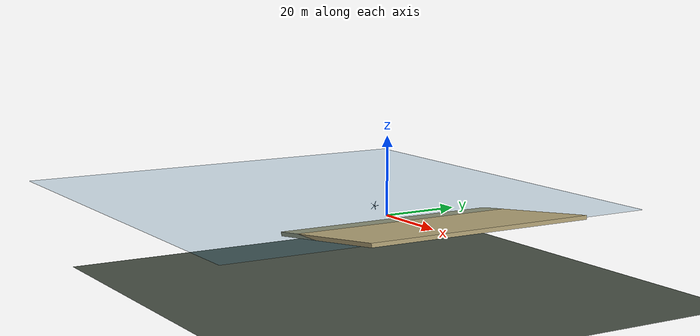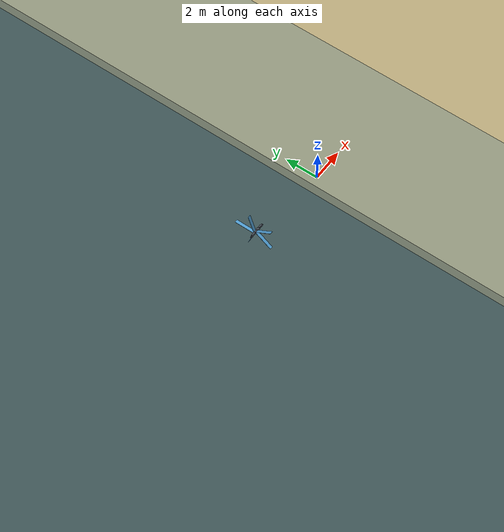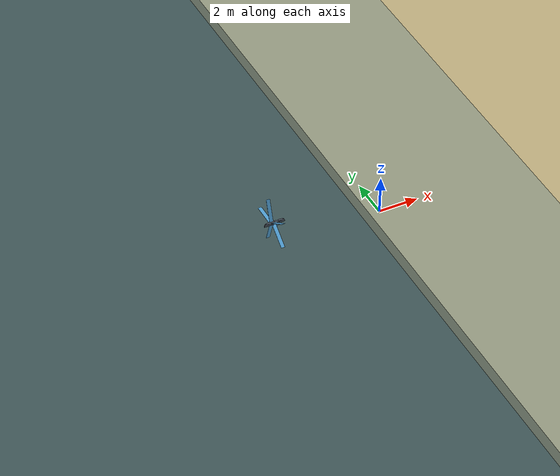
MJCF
<mujoco model="dytiscidae"><option timestep="0.004" gravity="0 0 -9.80665" density="0" viscosity="0" integrator="implicitfast" cone="elliptic" /><compiler angle="radian" autolimits="true" /><visual><global offwidth="1280" offheight="800" /><quality shadowsize="2048" offsamples="4" /><map znear="0.02" zfar="80" /><headlight ambient="0.45 0.46 0.48" diffuse="0.55 0.55 0.55" specular="0.15 0.15 0.15" /></visual><default><geom friction="0.9 0.02 0.001" condim="4" solref="0.008 1" margin="0.001" contype="1" conaffinity="2" /><joint damping="0.05" armature="0.002" limited="true" /></default><asset><texture type="skybox" builtin="gradient" rgb1="0.5 0.7 0.9" rgb2="0.05 0.1 0.2" width="256" height="256" /><texture name="grid" type="2d" builtin="checker" rgb1="0.25 0.28 0.24" rgb2="0.3 0.34 0.29" width="300" height="300" /><material name="seabed" texture="grid" texrepeat="20 20" reflectance="0.05" /><material name="beach" rgba="0.72 0.66 0.48 1" /><material name="water" rgba="0.15 0.4 0.55 0.25" /><mesh name="m0" vertex="-0.013602 -0.0314 -0.066995 -0.013602 -0.0314 -0.03979 -0.013602 -0.013602 -0.084792 -0.013602 0.013602 -0.084792 0.013602 -0.013602 -0.084792 0.013602 0.013602 -0.084792 -0.013602 -0.013602 -0.03979 -0.013602 0.013602 -0.066995 -0.013602 0.0314 -0.066995 -0.013602 0.0314 -0.03979 0.04996 -0.049197 -0.066995 0.04996 -0.049197 -0.03979 0.04996 -0.013602 0.084792 0.04996 0.013602 0.084792 0.04996 0.049197 -0.066995 0.04996 0.049197 -0.03979 0.077165 0.049197 -0.066995 0.077165 0.049197 -0.03979 0.11352 -0.049197 -0.066995 0.14073 -0.013602 -0.084792 0.11352 -0.013602 0.084792 0.14073 0.013602 0.084792 0.11352 0.049197 -0.066995 0.17708 -0.049197 0.066995 0.20429 -0.013602 0.084792 0.20429 0.049197 -0.021993 0.17708 0.049197 0.03979 0.17708 0.049197 0.066995 0.20429 0.049197 0.066995 0.24065 -0.049197 -0.066995 0.24065 -0.049197 0.066995 0.26785 0.013602 -0.084792 0.26785 -0.013602 0.084792 0.24065 0.049197 -0.066995 0.26785 0.049197 -0.066995 0.26785 0.049197 -0.049197 0.26785 0.049197 0.049197 0.26785 0.049197 0.066995 0.30421 -0.066995 -0.049197 0.30421 -0.066995 -0.021993 0.33141 -0.066995 -0.049197 0.33141 -0.066995 -0.021993 0.33141 -0.049197 -0.066995 0.33141 -0.049197 -0.0041953 0.33141 -0.049197 0.066995 0.33141 -0.021993 0.066995 0.33141 -0.0314 -0.049197 0.30421 -0.013602 -0.084792 0.30421 0.013602 -0.084792 0.33141 -0.013602 -0.084792 0.33141 0.013602 -0.084792 0.33141 0.013602 -0.066995 0.33141 -0.013602 0.084792 0.33141 0.013602 0.084792 0.33141 0.0314 -0.066995 0.33141 0.0314 -0.049197 0.33141 0.0314 -0.021993 0.33141 0.0314 -0.0041953 0.33141 0.0314 0.013602" face="13 15 9 13 15 27 8 15 9 45 44 53 52 44 53 17 15 16 14 15 16 14 8 15 14 3 16 14 8 3 7 8 9 7 8 3 51 55 53 51 45 53 42 49 40 2 7 3 43 44 40 43 45 44 22 33 16 56 55 54 35 33 34 35 56 36 35 34 54 35 56 54 26 17 16 26 15 27 26 17 15 41 44 40 41 23 39 38 10 40 38 39 10 38 41 40 38 41 39 30 23 12 30 52 44 30 41 44 30 41 23 11 39 10 11 23 39 11 1 10 11 23 12 11 1 12 6 13 9 6 13 12 6 1 12 29 42 49 29 10 40 29 42 40 4 2 3 48 33 34 48 31 33 46 51 45 46 43 45 46 43 40 46 49 40 46 51 49 5 31 33 5 22 33 5 31 3 5 3 16 5 22 16 28 13 27 0 7 9 0 6 9 0 2 7 0 6 1 0 1 10 0 2 10 18 2 10 18 29 10 19 29 49 19 4 2 19 18 2 19 18 29 19 4 3 19 31 3 50 34 54 50 48 34 50 48 49 50 51 49 50 55 54 50 51 55 37 56 36 37 58 56 37 58 53 37 21 53 37 28 27 37 21 13 37 28 13 37 35 33 37 35 36 37 26 27 57 55 53 57 58 53 57 56 55 57 58 56 32 30 52 32 24 30 32 52 53 32 21 53 32 21 13 47 48 49 47 19 49 47 48 31 47 19 31 25 37 33 25 37 26 25 33 16 25 26 16 20 32 24 20 30 12 20 24 30 20 13 12 20 32 13" /><mesh name="m1" vertex="0.30421 0.0041953 0.0041953 0.30421 0.0041953 0.021993 0.30421 0.0041953 0.066995 0.30421 0.0314 0.066995 0.30421 0.021993 -0.066995 0.30421 0.049197 -0.066995 0.30421 0.049197 -0.03979 0.30421 0.049197 -0.049197 0.30421 0.021993 -0.0314 0.30421 0.021993 -0.0041953 0.30421 0.049197 0.049197 0.30421 0.021993 0.066995 0.30421 0.049197 0.066995 0.33141 0.049197 0.066995 0.30421 0.066995 -0.049197 0.30421 0.066995 -0.021993 0.36777 -0.066995 -0.049197 0.36777 -0.066995 -0.021993 0.39498 -0.066995 -0.021993 0.36777 -0.066995 0.049197 0.36777 -0.049197 -0.066995 0.36777 -0.049197 0.066995 0.36777 -0.013602 -0.084792 0.36777 0.013602 -0.084792 0.36777 -0.013602 0.084792 0.36777 0.013602 0.084792 0.39498 -0.013602 0.084792 0.39498 0.013602 0.084792 0.36777 0.049197 -0.066995 0.36777 0.066995 0.049197 0.39498 0.066995 0.049197 0.43133 -0.066995 -0.049197 0.45854 -0.066995 -0.049197 0.45854 -0.066995 0.049197 0.43133 -0.049197 -0.066995 0.43133 -0.049197 0.066995 0.45854 -0.013602 0.084792 0.45854 0.013602 0.084792 0.45854 0.049197 -0.066995 0.45854 0.049197 0.066995 0.43133 0.066995 -0.049197 0.45854 0.066995 -0.049197 0.45854 0.066995 -0.0314 0.45854 0.066995 0.049197 0.4949 -0.066995 -0.049197 0.5221 -0.066995 -0.049197 0.5221 -0.066995 -0.021993 0.5221 -0.066995 -0.0314 0.5221 -0.066995 -0.0041953 0.5221 -0.066995 0.021993 0.5221 -0.066995 0.049197 0.5221 -0.03979 0.049197 0.4949 -0.049197 -0.066995 0.5221 -0.049197 -0.066995 0.5221 -0.049197 -0.049197 0.5221 -0.049197 0.066995 0.5221 -0.021993 0.066995 0.5221 -0.0314 -0.066995 0.5221 -0.0041953 -0.049197 0.5221 -0.0041953 0.03979 0.5221 -0.0041953 0.066995 0.4949 0.013602 -0.084792 0.5221 -0.013602 -0.084792 0.5221 0.013602 -0.084792 0.5221 -0.013602 -0.066995 0.5221 0.013602 -0.03979 0.5221 0.013602 0.013602" face="42 43 65 66 43 65 63 42 65 63 42 41 10 14 6 60 66 43 20 4 22 20 4 16 20 62 22 20 34 62 5 4 22 47 44 48 32 20 16 30 29 12 56 60 36 39 30 43 39 60 43 37 60 36 37 39 60 40 5 14 40 5 28 40 42 41 40 42 43 38 63 41 38 40 41 38 40 28 61 63 62 61 38 63 61 38 28 61 62 22 7 5 4 7 14 6 7 5 14 35 19 21 33 35 19 2 19 21 0 4 16 17 19 16 57 63 62 57 53 62 18 44 48 18 19 48 18 17 16 18 17 19 45 20 34 45 32 20 45 32 44 45 47 44 15 40 14 15 30 29 15 30 43 15 40 43 15 29 12 15 10 12 15 10 14 59 60 66 59 56 60 59 66 65 59 56 65 51 56 65 13 30 12 13 39 30 24 2 21 23 5 28 23 61 28 23 5 22 23 61 22 11 10 12 11 10 6 11 0 2 3 25 12 3 11 12 3 11 2 3 24 25 3 24 2 8 0 6 8 0 4 8 7 6 8 7 4 1 2 19 1 0 2 1 19 16 1 0 16 64 57 63 31 32 44 31 18 44 31 32 16 31 18 16 52 45 34 52 45 53 52 34 62 52 53 62 54 57 53 54 45 53 50 47 48 50 51 56 50 33 19 50 33 35 27 25 12 27 13 12 27 37 36 27 37 39 27 13 39 9 0 6 9 11 6 9 11 0 46 45 47 46 54 45 46 50 47 46 54 51 46 50 51 58 51 65 58 54 51 58 54 57 58 63 65 58 64 63 58 64 57 55 50 56 55 56 36 55 50 35 55 35 36 49 19 48 49 50 48 49 50 19 26 24 25 26 27 25 26 27 36 26 35 36 26 35 21 26 24 21" /><mesh name="m2" vertex="0.4949 -0.013602 0.0041953 0.4949 -0.013602 0.021993 0.4949 -0.013602 0.066995 0.4949 -0.013602 0.084792 0.4949 0.013602 0.084792 0.4949 0.0041953 -0.066995 0.4949 0.0314 -0.066995 0.4949 0.0041953 -0.049197 0.4949 0.0041953 -0.021993 0.4949 0.0314 0.066995 0.4949 0.021993 -0.066995 0.4949 0.021993 -0.03979 0.4949 0.049197 -0.066995 0.4949 0.049197 -0.049197 0.4949 0.021993 0.0041953 0.4949 0.021993 0.021993 0.4949 0.049197 0.03979 0.4949 0.049197 0.066995 0.4949 0.066995 -0.049197 0.5221 0.066995 -0.021993 0.4949 0.066995 -0.0314 0.4949 0.066995 -0.0041953 0.4949 0.066995 0.021993 0.4949 0.066995 0.049197 0.55846 -0.066995 -0.049197 0.55846 -0.066995 -0.021993 0.58566 -0.066995 -0.049197 0.55846 -0.066995 -0.0314 0.55846 -0.066995 0.049197 0.55846 -0.049197 -0.066995 0.58566 -0.049197 -0.066995 0.55846 -0.049197 0.066995 0.58566 -0.049197 0.066995 0.55846 -0.013602 -0.084792 0.55846 0.013602 -0.084792 0.58566 0.013602 0.084792 0.55846 0.049197 -0.066995 0.58566 0.049197 0.066995 0.55846 0.066995 -0.049197 0.55846 0.066995 -0.0041953 0.55846 0.066995 0.021993 0.55846 0.066995 0.049197 0.64923 -0.066995 0.049197 0.62202 -0.049197 0.066995 0.64923 -0.049197 0.066995 0.62202 -0.013602 -0.084792 0.62202 0.013602 -0.084792 0.64923 -0.013602 -0.084792 0.64923 0.013602 -0.084792 0.62202 -0.013602 0.084792 0.64923 -0.013602 0.084792 0.64923 0.013602 0.084792 0.62202 0.049197 -0.066995 0.64923 0.049197 -0.066995 0.64923 0.049197 0.066995 0.62202 0.066995 -0.049197 0.64923 0.066995 -0.049197 0.62202 0.066995 0.049197 0.64923 0.066995 0.049197 0.68558 -0.066995 -0.049197 0.71279 -0.066995 -0.049197 0.71279 -0.066995 -0.021993 0.68558 -0.049197 -0.066995 0.71279 -0.049197 -0.066995 0.71279 -0.021993 -0.066995 0.71279 -0.021993 0.049197 0.68558 -0.049197 0.066995 0.71279 -0.049197 0.066995 0.71279 -0.021993 0.066995 0.71279 -0.0314 -0.066995 0.71279 -0.0041953 -0.066995 0.71279 -0.0041953 -0.03979 0.71279 -0.0041953 0.013602" face="67 60 71 58 56 71 72 67 71 72 58 71 26 29 24 33 29 45 31 28 3 62 29 45 62 63 45 62 63 29 70 56 71 70 64 71 47 63 45 47 48 45 65 72 67 59 63 60 59 26 60 34 33 12 4 23 9 5 0 24 5 29 24 5 33 29 61 67 60 61 42 60 61 42 67 1 0 24 1 25 24 27 26 24 27 25 24 27 25 28 27 26 60 27 42 60 27 42 28 53 70 56 53 70 48 53 52 48 69 70 48 69 47 63 69 47 48 69 70 64 69 64 71 69 60 71 69 63 60 36 52 48 36 18 12 16 23 9 16 13 9 30 26 29 30 59 26 30 63 29 30 59 63 46 34 33 46 48 45 46 33 45 46 36 48 46 34 12 46 36 12 2 4 3 2 4 0 2 1 0 2 28 3 2 25 28 2 1 25 68 65 67 68 72 58 68 65 72 50 68 67 10 33 12 10 5 33 32 31 3 32 43 3 32 31 28 32 42 28 32 43 42 55 36 52 55 53 56 55 53 52 22 16 23 15 4 9 15 13 9 15 14 13 41 57 58 41 57 23 54 57 58 54 68 58 66 50 67 66 42 67 44 43 42 44 66 42 6 10 12 6 18 12 6 18 13 6 10 5 38 36 18 38 55 36 38 55 56 38 58 56 38 39 58 40 39 23 40 41 23 40 39 58 40 41 58 21 20 23 21 20 18 21 22 23 21 18 13 21 16 13 21 22 16 17 4 23 51 50 68 51 54 68 51 35 54 49 66 50 49 44 66 49 43 3 49 44 43 49 4 3 49 35 4 49 51 50 49 51 35 8 15 14 8 14 13 8 4 0 8 15 4 19 38 39 19 20 18 19 38 18 19 39 23 19 20 23 37 35 4 37 35 54 37 17 4 37 17 23 37 57 23 37 54 57 7 6 5 7 8 6 7 5 0 7 8 0 11 6 13 11 8 13 11 8 6" /><mesh name="m3" vertex="0.68558 -0.0314 0.0041953 0.68558 -0.0314 0.021993 0.68558 -0.0314 0.066995 0.68558 -0.013602 -0.084792 0.68558 0.013602 -0.084792 0.68558 0.013602 -0.057588 0.68558 -0.013602 -0.049197 0.68558 -0.013602 -0.021993 0.68558 0.013602 0.066995 0.68558 -0.013602 0.084792 0.68558 0.013602 0.084792 0.68558 0.0041953 -0.066995 0.68558 0.0314 -0.066995 0.68558 0.0041953 0.0041953 0.68558 0.0314 0.021993 0.68558 0.049197 -0.066995 0.68558 0.049197 0.03979 0.68558 0.049197 0.066995 0.71279 0.049197 0.066995 0.68558 0.066995 -0.049197 0.68558 0.066995 -0.021993 0.71279 0.066995 -0.049197 0.71279 0.066995 -0.021993 0.74915 -0.049197 -0.066995 0.74915 -0.049197 0.049197 0.74915 -0.049197 0.03979 0.74915 -0.049197 0.066995 0.77635 -0.013602 -0.084792 0.74915 0.049197 0.066995 0.83991 -0.049197 -0.049197 0.81271 -0.049197 0.066995 0.83991 -0.049197 0.066995 0.83991 0.013602 -0.084792 0.81271 -0.013602 0.084792 0.83991 0.049197 -0.066995 0.81271 0.049197 0.066995 0.83991 0.049197 0.066995 0.87627 -0.049197 -0.066995 0.93983 -0.049197 -0.066995 0.93983 -0.049197 -0.03979 0.96704 -0.049197 -0.066995 0.96704 -0.049197 -0.03979 0.93983 -0.013602 -0.084792 0.96704 -0.013602 0.084792 0.96704 0.013602 0.084792 0.93983 0.049197 -0.066995 0.96704 0.049197 -0.066995 0.96704 0.049197 -0.03979 1.0306 -0.0314 -0.066995 1.0306 -0.0314 -0.03979 1.0306 -0.0041953 -0.03979 1.0034 -0.013602 -0.084792 1.0034 0.013602 -0.084792 1.0306 -0.013602 -0.084792 1.0306 0.013602 -0.084792 1.0306 0.013602 -0.066995 1.0306 0.0041953 -0.066995 1.0306 0.0314 -0.066995 1.0306 0.0314 -0.03979" face="49 43 50 33 43 44 58 43 50 58 43 44 29 23 30 29 23 38 37 23 38 41 49 43 40 41 49 48 49 50 48 40 49 48 40 53 10 33 44 9 26 2 9 10 33 9 33 30 9 26 30 9 7 8 24 26 2 24 26 30 57 58 46 34 19 15 34 19 46 34 45 46 34 4 15 34 4 32 17 9 8 17 9 10 27 23 3 27 37 23 27 4 3 27 4 32 42 37 38 42 40 38 42 27 37 42 27 32 0 1 2 0 9 2 0 9 7 0 6 7 0 6 3 0 23 3 0 1 23 31 41 43 31 33 30 31 33 43 47 58 46 47 58 44 47 36 44 28 17 18 28 17 10 28 10 44 22 47 36 22 47 46 25 1 2 25 24 2 25 1 23 25 23 30 25 24 30 54 57 46 54 48 53 16 19 8 16 17 8 16 17 19 13 7 8 13 5 8 13 5 7 12 5 19 12 4 15 12 19 15 14 19 8 14 5 8 14 5 19 51 40 53 51 42 40 39 40 41 39 31 41 39 40 38 39 29 38 39 29 30 39 31 30 35 28 18 35 36 44 35 28 44 20 17 19 20 17 18 20 35 18 20 22 36 20 35 36 21 19 46 21 22 46 21 20 19 21 20 22 52 45 46 52 54 46 52 34 45 52 34 32 52 51 42 52 54 53 52 51 53 52 42 32 56 48 50 56 54 48 11 4 3 11 12 4 11 12 5 11 6 3 11 5 7 11 6 7 55 58 50 55 56 50 55 56 54 55 57 58 55 54 57" /><mesh name="m4" vertex="-0.0018699 -0.01187 -0.0018699 -0.0018699 -0.01187 0.0018699 0.0018699 -0.01187 -0.0018699 0.0018699 -0.01187 0.0018699 -0.0018699 -0.0093699 -0.0068699 -0.0018699 -0.0093699 0.0068699 0.0018699 -0.0093699 0.0068699 -0.0018699 -0.0068699 -0.0093699 -0.0018699 -0.0031301 0.0043699 -0.0018699 -0.0068699 0.0093699 -0.0018699 -0.0043699 -0.0068699 -0.0018699 -0.0043699 -0.0043699 -0.0018699 -0.0043699 -0.0018699 -0.0018699 -0.0018699 -0.01187 -0.0018699 0.0018699 -0.01187 0.0018699 -0.0018699 -0.01187 0.0018699 0.0018699 -0.01187 -0.0018699 -0.0018699 -0.0093699 -0.0018699 -0.0018699 0.0093699 -0.0018699 -0.0018699 0.01187 -0.0018699 0.0018699 0.0081301 -0.0018699 0.0018699 0.01187 0.0018699 0.0018699 0.01187 -0.0018699 0.0031301 -0.0093699 -0.0018699 0.0068699 -0.0093699 -0.0018699 0.0031301 -0.0031301 -0.0018699 0.0068699 0.00063009 -0.0018699 0.0068699 0.0056301 -0.0018699 0.0068699 0.0093699 -0.0018699 0.0056301 -0.0031301 -0.0018699 0.0093699 -0.0068699 0.0018699 0.0093699 -0.0068699 -0.0018699 0.0093699 0.00063009 -0.0018699 0.0093699 0.0043699 -0.0018699 0.0093699 0.0068699 0.0018699 0.0093699 0.0068699 -0.0018699 0.0081301 -0.0018699 -0.0018699 0.01187 -0.0018699 -0.0018699 0.01187 0.0018699 0.010239 -0.0093699 0.0068699 0.006499 -0.0068699 0.0093699 0.010239 -0.0018699 -0.01187 0.010239 0.0018699 -0.01187 0.010239 -0.0018699 0.01187 0.010239 0.0018699 0.01187 0.006499 0.0068699 -0.0093699 0.010239 0.0068699 -0.0093699 0.006499 0.0068699 0.0093699 0.010239 0.0068699 0.0093699 0.010239 0.0093699 -0.0068699 0.010239 0.0093699 0.0068699 0.006499 0.01187 0.0018699 0.010239 0.01187 -0.0018699 0.010239 0.01187 0.0018699 0.014868 -0.01187 0.0018699 0.018608 -0.01187 -0.0018699 0.018608 -0.01187 0.0018699 0.014868 -0.0093699 -0.0068699 0.018608 -0.0093699 -0.0068699 0.018608 -0.0093699 -0.0018699 0.018608 -0.0093699 0.0043699 0.018608 -0.0056301 0.00063009 0.014868 -0.0093699 0.0068699 0.018608 -0.0093699 0.0068699 0.014868 -0.0068699 -0.0093699 0.018608 -0.0068699 -0.0093699 0.018608 -0.0068699 -0.0068699 0.018608 -0.0031301 0.0068699 0.018608 -0.0068699 0.0093699 0.018608 -0.0031301 0.0093699 0.018608 -0.00063009 -0.0093699 0.018608 -0.0043699 -0.0068699 0.018608 -0.00063009 0.0043699 0.018608 -0.00063009 0.0068699" face="42 46 70 73 72 67 61 72 67 61 72 70 65 42 70 20 18 28 5 18 19 5 18 8 53 51 52 53 73 72 53 70 52 53 72 70 50 53 51 50 53 73 69 73 67 69 50 48 69 50 73 21 22 28 21 22 19 21 18 28 21 18 19 49 31 52 49 70 52 49 46 70 30 37 52 30 31 52 66 65 70 66 65 59 41 42 15 41 65 42 26 18 8 26 20 18 11 10 0 11 5 0 60 61 59 60 56 59 60 61 67 60 56 63 58 65 59 58 56 59 58 56 55 54 56 63 54 56 55 47 50 28 47 50 48 47 22 28 47 22 48 43 22 19 43 40 19 13 42 15 13 65 64 13 41 15 13 41 65 45 30 31 45 49 46 45 49 31 45 42 46 71 61 59 71 66 59 71 61 70 71 66 70 7 65 64 7 13 64 7 14 13 7 10 0 7 4 0 2 4 0 2 54 55 33 34 28 9 5 19 9 40 19 6 9 5 12 5 8 12 11 5 57 58 65 57 7 65 57 7 4 57 58 55 57 2 55 57 2 4 1 5 0 1 2 0 1 6 5 35 50 28 35 34 28 44 22 48 44 43 22 44 69 48 44 43 69 68 43 69 68 69 67 68 43 40 68 60 67 68 60 63 68 9 40 68 6 9 24 45 30 24 30 37 24 36 26 24 29 26 17 7 10 17 7 14 38 33 34 38 35 34 38 37 52 38 51 52 38 50 51 38 35 50 32 36 26 32 33 26 32 38 33 32 38 37 32 24 37 32 24 36 27 20 28 27 33 28 27 26 20 27 33 26 3 2 54 3 1 2 3 6 54 3 1 6 62 68 63 62 54 63 62 6 54 25 29 26 25 12 11 25 26 8 25 12 8 16 45 42 16 24 45 16 24 14 16 13 42 16 14 13 39 68 6 39 62 6 39 62 68 23 24 29 23 25 29 23 24 14 23 25 11 23 11 10 23 17 10 23 17 14" /><mesh name="m5" vertex="0.014868 -0.0043699 0.0056301 0.014868 -0.0043699 0.0093699 0.014868 -0.0018699 -0.01187 0.014868 0.0018699 -0.01187 0.018608 -0.0018699 -0.01187 0.018608 0.0018699 -0.01187 0.014868 -0.0018699 -0.0056301 0.014868 0.0018699 -0.0093699 0.014868 0.0018699 -0.0031301 0.014868 -0.0018699 0.0018699 0.014868 -0.0018699 0.0068699 0.014868 -0.0018699 0.01187 0.014868 0.0018699 0.0081301 0.014868 0.0018699 0.01187 0.018608 0.0018699 0.01187 0.014868 0.0043699 -0.0056301 0.014868 0.00063009 0.0056301 0.014868 0.00063009 0.0093699 0.014868 0.0068699 -0.0093699 0.018608 0.0068699 -0.0093699 0.014868 0.0068699 0.0093699 0.018608 0.0068699 0.0093699 0.014868 0.0093699 -0.0068699 0.014868 0.0056301 0.0043699 0.014868 0.0093699 0.0031301 0.014868 0.0093699 0.0068699 0.018608 0.0093699 0.0068699 0.014868 0.01187 -0.0018699 0.014868 0.01187 0.0018699 0.018608 0.01187 0.0018699 0.023237 -0.0093699 -0.0068699 0.026977 -0.0093699 -0.0068699 0.026977 -0.0093699 -0.0031301 0.023237 -0.0093699 -0.0043699 0.026977 -0.0093699 -0.00063009 0.023237 -0.0093699 -0.0018699 0.026977 -0.0093699 -0.0018699 0.023237 -0.0093699 0.0043699 0.023237 -0.0093699 0.0068699 0.026977 -0.0093699 0.0068699 0.023237 -0.0068699 -0.0093699 0.026977 -0.0068699 -0.0093699 0.023237 -0.0068699 0.0093699 0.023237 -0.0018699 -0.01187 0.023237 -0.0018699 0.01187 0.026977 0.0018699 0.01187 0.026977 0.0068699 -0.0093699 0.023237 0.0068699 0.0093699 0.026977 0.0068699 0.0093699 0.026977 0.0093699 0.0068699 0.023237 0.01187 0.0018699 0.026977 0.01187 -0.0018699 0.026977 0.01187 0.0018699 0.035346 -0.0068699 -0.0093699 0.035346 -0.0068699 -0.0056301 0.035346 -0.0068699 -0.0068699 0.031606 -0.0068699 0.0093699 0.035346 -0.0068699 0.0056301 0.035346 -0.0068699 0.0093699 0.035346 -0.0043699 -0.0093699 0.035346 -0.00063009 -0.0031301 0.035346 -0.0043699 0.0093699 0.035346 -0.0018699 -0.01187 0.035346 0.0018699 -0.01187 0.035346 0.0018699 -0.0056301 0.035346 0.0018699 -0.00063009 0.035346 0.0018699 0.0043699 0.035346 -0.0018699 0.01187 0.035346 0.0018699 0.01187 0.035346 0.00063009 -0.0093699 0.035346 0.0043699 -0.0093699 0.035346 0.0043699 -0.0068699 0.031606 0.0068699 -0.0093699 0.035346 0.0068699 -0.0093699 0.035346 0.0068699 -0.0031301 0.035346 0.0068699 0.0093699 0.035346 0.0093699 -0.0068699 0.035346 0.0093699 -0.0031301 0.035346 0.0093699 -0.00063009" face="67 58 44 61 67 58 18 22 28 37 1 35 37 38 1 37 36 35 27 22 28 76 73 22 76 27 22 6 0 2 19 18 22 39 37 38 53 41 62 53 54 55 30 0 2 23 12 16 23 16 15 24 23 12 24 18 28 24 23 15 24 18 15 17 11 1 17 11 13 17 0 1 10 0 16 10 12 16 10 17 0 10 17 12 66 65 74 66 65 61 60 61 55 60 65 61 50 27 28 68 67 44 68 61 67 68 66 61 68 66 74 71 70 73 78 75 52 51 76 27 51 50 52 51 50 27 7 18 2 7 6 2 7 18 15 7 8 15 9 6 0 9 7 6 9 7 8 9 0 16 9 16 15 9 8 15 43 41 62 43 41 2 3 18 2 3 5 18 3 43 5 63 70 73 63 43 62 63 43 5 72 5 18 72 63 73 72 63 5 34 37 36 34 39 37 57 61 58 57 34 54 57 54 55 57 61 55 57 39 58 57 34 39 32 34 36 32 34 54 40 41 2 40 30 2 40 30 41 33 30 0 33 1 35 33 0 1 33 36 35 31 53 41 31 30 41 31 53 54 31 32 54 31 33 30 31 32 36 31 33 36 42 38 1 42 11 1 42 39 38 42 11 44 14 68 44 14 11 44 14 11 13 77 68 75 77 78 75 77 68 74 77 76 73 77 78 52 77 71 74 77 71 73 77 51 52 77 51 76 20 14 13 20 25 28 20 24 28 20 24 12 20 17 13 20 17 12 29 50 28 29 25 28 49 75 52 49 50 52 49 29 50 64 60 55 64 71 55 64 60 65 64 65 74 64 71 74 69 71 70 69 63 70 69 63 62 4 43 2 4 3 2 4 3 43 46 19 18 46 72 18 46 72 73 46 73 22 46 19 22 56 39 58 56 42 39 56 58 44 56 42 44 45 14 68 48 49 75 48 45 14 48 68 75 48 45 68 26 29 25 26 49 29 26 48 49 59 71 55 59 69 71 59 53 55 59 69 62 59 53 62 21 20 25 21 26 25 47 26 48 47 21 26 47 48 14 47 20 14 47 21 20" /><mesh name="m6" vertex="0.031606 0.0056301 -0.0018699 0.031606 0.0056301 0.00063009 0.031606 0.0056301 0.0068699 0.031606 0.0093699 0.0068699 0.031606 0.01187 -0.0018699 0.031606 0.01187 0.0018699 0.035346 0.01187 0.0018699 0.039975 -0.0043699 -0.0093699 0.043714 -0.0043699 -0.0093699 0.039975 -0.0043699 -0.0068699 0.039975 -0.0043699 0.0018699 0.043714 -0.0043699 0.0068699 0.039975 -0.0043699 0.0093699 0.043714 -0.0043699 0.0093699 0.039975 -0.0018699 -0.01187 0.039975 0.0018699 -0.01187 0.039975 -0.0018699 0.01187 0.039975 0.0018699 0.01187 0.043714 -0.0018699 0.01187 0.039975 0.0068699 -0.0093699 0.039975 0.0068699 0.0093699 0.039975 0.0093699 -0.0068699 0.052083 -0.0043699 -0.0068699 0.048344 -0.0043699 -0.00063009 0.052083 -0.0043699 -0.00063009 0.052083 -0.0043699 -0.0018699 0.052083 -0.0043699 0.0018699 0.052083 -0.0018699 -0.01187 0.052083 0.0018699 -0.01187 0.048344 -0.0018699 0.01187 0.052083 -0.0018699 0.01187 0.052083 0.0018699 0.01187 0.048344 0.0068699 0.0093699 0.048344 0.0093699 0.0068699 0.052083 0.01187 -0.0018699 0.060452 -0.0018699 -0.00063009 0.056713 0.0093699 -0.0068699 0.060452 0.0093699 0.0068699 0.068821 0.0068699 -0.0093699 0.068821 0.0093699 0.0068699 0.068821 0.01187 -0.0018699 0.068821 0.01187 0.0018699 0.07345 0.0068699 -0.0093699 0.07719 0.0031301 -0.0093699 0.07719 0.0031301 -0.0056301 0.07719 0.0068699 -0.0093699 0.07719 0.0031301 -0.0031301 0.07719 0.0031301 -0.0043699 0.07719 0.0068699 -0.00063009 0.07719 0.0031301 0.0031301 0.07719 0.0031301 0.0068699 0.07719 0.0068699 0.0068699 0.07719 0.0031301 0.0093699 0.07719 0.0068699 0.0093699 0.07719 0.0093699 -0.0068699 0.07719 0.0093699 -0.00063009 0.07719 0.0093699 0.0018699" face="55 45 48 39 41 53 0 2 5 46 45 48 16 2 12 10 12 9 10 2 9 10 2 12 6 41 5 6 34 41 40 34 41 56 41 53 56 55 53 56 55 41 4 0 5 4 6 5 4 6 34 1 2 9 1 0 9 1 0 2 14 4 15 14 4 0 28 14 15 28 14 27 30 13 26 30 31 29 30 31 53 30 13 12 51 55 48 51 55 53 52 30 53 52 30 26 43 28 45 43 28 27 32 31 53 18 16 12 18 30 29 18 30 12 17 32 20 17 32 31 17 16 2 17 18 16 17 31 29 17 18 29 54 55 41 54 40 41 54 55 45 54 40 34 19 28 15 19 4 15 19 4 21 11 13 12 11 13 26 11 12 9 11 23 9 7 0 9 7 14 0 7 14 27 7 8 27 49 51 53 49 46 48 49 51 48 49 52 26 44 43 45 44 49 46 33 32 53 33 41 5 33 39 41 3 17 20 3 32 20 3 17 2 3 33 32 3 33 5 3 2 5 38 19 28 36 19 21 36 4 21 36 38 54 36 38 19 36 4 34 36 54 34 50 52 53 50 49 53 50 49 52 47 46 45 47 44 45 47 44 46 22 44 43 22 43 27 22 8 27 22 7 9 22 7 8 37 39 53 37 33 53 37 33 39 42 54 45 42 38 54 42 28 45 42 38 28 35 49 26 35 44 49 35 22 44 24 35 26 24 35 22 25 24 22 25 23 9 25 22 9 25 24 26 25 11 26 25 11 23" /><mesh name="m7" vertex="0.07345 0.0056301 0.00063009 0.07345 0.0056301 0.0043699 0.07345 0.0093699 0.0043699 0.07345 0.0056301 0.0031301 0.07345 0.0056301 0.0068699 0.07345 0.0093699 0.0068699 0.07719 0.0093699 0.0068699 0.07345 0.0081301 -0.0018699 0.07345 0.0081301 0.0018699 0.07345 0.01187 -0.0018699 0.07345 0.01187 0.0018699 0.07719 0.01187 -0.0018699 0.07719 0.01187 0.0018699 0.081819 0.0031301 -0.0093699 0.081819 0.0068699 -0.0093699 0.081819 0.0031301 -0.0043699 0.081819 0.0031301 0.0043699 0.081819 0.0031301 0.0093699 0.081819 0.0068699 0.0093699 0.085559 0.0031301 0.0093699 0.085559 0.0068699 0.0093699 0.081819 0.0093699 -0.0068699 0.081819 0.0093699 0.0068699 0.085559 0.0093699 0.0068699 0.081819 0.01187 0.0018699 0.085559 0.01187 -0.0018699 0.085559 0.01187 0.0018699 0.090188 0.00063009 -0.0068699 0.090188 0.00063009 -0.0043699 0.090188 0.00063009 0.0018699 0.090188 0.0031301 0.0093699 0.090188 0.01187 0.0018699 0.098557 0.00063009 -0.0068699 0.1023 0.0031301 -0.0093699 0.1023 0.0093699 0.0068699 0.1023 0.01187 0.0018699 0.10693 0.00063009 -0.0093699 0.11067 0.00063009 -0.0093699 0.10693 0.01187 0.0018699 0.11529 0.00063009 -0.0068699 0.11903 0.0068699 -0.0093699 0.11529 0.0031301 0.0093699 0.11903 0.0068699 0.0093699 0.11903 0.0093699 -0.0068699 0.11529 0.01187 -0.0018699 0.12366 0.00063009 -0.0093699 0.12366 0.00063009 -0.0068699 0.12366 0.0068699 -0.0093699 0.1274 0.0031301 0.0093699 0.1274 0.0068699 0.0093699 0.12366 0.01187 -0.0018699 0.1274 0.01187 0.0018699 0.13203 0.00063009 -0.0093699 0.13577 0.00063009 -0.0093699 0.13577 0.00063009 -0.0056301 0.13577 0.0043699 -0.0093699 0.13203 0.00063009 -0.0031301 0.13577 0.00063009 -0.0068699 0.13577 0.00063009 -0.0031301 0.13577 0.00063009 -0.0043699 0.13577 0.00063009 0.0018699 0.13577 0.0043699 -0.0018699 0.13203 0.00063009 0.0043699 0.13577 0.00063009 0.00063009 0.13577 0.00063009 0.0043699 0.13203 0.0031301 -0.0093699 0.13203 0.0068699 -0.0093699 0.13577 0.0031301 -0.0093699 0.13577 0.0068699 -0.0093699 0.13577 0.0031301 -0.0068699 0.13577 0.0068699 0.0068699 0.13577 0.0031301 0.0093699 0.13577 0.0068699 0.0093699 0.13203 0.0093699 -0.0068699 0.13577 0.0093699 -0.0068699 0.13577 0.0093699 0.0068699 0.13203 0.01187 -0.0018699 0.13577 0.01187 -0.0018699 0.13577 0.01187 0.0018699" face="64 62 63 64 62 71 18 4 17 7 9 0 7 9 14 29 62 17 29 62 63 29 28 63 13 15 28 13 7 0 13 7 14 53 52 57 74 78 77 66 43 14 21 9 14 21 43 14 21 11 9 21 11 43 54 52 57 54 53 57 54 53 59 60 64 63 60 64 71 60 71 70 60 54 63 60 54 59 60 59 61 60 61 70 19 62 17 19 41 62 48 62 71 48 41 71 48 41 62 20 18 17 10 11 9 5 18 4 5 2 4 5 20 18 5 2 9 5 10 9 8 9 0 8 2 9 8 4 0 8 2 4 16 29 28 16 15 28 16 29 17 33 13 45 33 13 14 67 53 59 67 53 68 67 74 68 73 66 43 73 74 77 73 74 68 73 66 68 40 66 14 40 33 45 40 33 14 55 53 68 55 66 68 55 66 53 65 53 52 65 66 53 65 52 45 65 66 45 39 28 63 39 46 63 39 46 52 56 46 63 56 54 52 56 46 52 30 41 71 30 42 71 30 20 42 30 20 17 30 19 17 30 19 41 49 72 71 49 42 71 24 10 31 12 10 31 12 10 11 6 5 20 6 5 10 6 24 10 6 31 22 6 24 31 23 6 22 23 6 20 3 16 15 3 4 0 3 13 0 3 13 15 27 13 28 27 36 13 37 52 45 37 36 52 37 13 45 37 36 13 69 59 61 69 67 59 69 74 61 69 67 74 47 66 45 47 40 45 47 40 66 50 73 43 50 11 43 50 44 11 25 11 31 25 44 11 51 25 44 51 50 44 51 78 77 51 50 77 58 54 63 58 56 63 58 56 54 75 49 42 75 49 72 75 51 78 75 51 35 75 74 78 75 71 70 75 72 71 75 61 70 75 74 61 26 11 31 26 12 31 26 12 11 1 16 17 1 3 16 1 4 17 1 3 4 32 27 28 32 27 36 32 39 28 32 36 52 32 39 52 76 73 77 76 50 77 76 50 73 38 35 31 38 51 35 38 25 31 38 51 25 34 75 42 34 20 42 34 23 20 34 23 22 34 75 35 34 31 22 34 35 31" /><mesh name="m8" vertex="-0.0018699 -0.01187 -0.0018699 -0.0018699 -0.01187 0.0018699 0.0018699 -0.01187 -0.0018699 0.0018699 -0.01187 0.0018699 -0.0018699 -0.0093699 -0.0068699 -0.0018699 -0.0093699 0.0068699 0.0018699 -0.0093699 0.0068699 -0.0018699 -0.0068699 -0.0093699 -0.0018699 -0.0031301 0.0043699 -0.0018699 -0.0068699 0.0093699 -0.0018699 -0.0043699 -0.0068699 -0.0018699 -0.0043699 -0.0043699 -0.0018699 -0.0043699 -0.0018699 -0.0018699 -0.0018699 -0.01187 -0.0018699 0.0018699 -0.01187 0.0018699 -0.0018699 -0.01187 0.0018699 0.0018699 -0.01187 -0.0018699 -0.0018699 -0.0093699 -0.0018699 -0.0018699 0.0093699 -0.0018699 -0.0018699 0.01187 -0.0018699 0.0018699 0.0081301 -0.0018699 0.0018699 0.01187 0.0018699 0.0018699 0.01187 -0.0018699 0.0031301 -0.0093699 -0.0018699 0.0068699 -0.0093699 -0.0018699 0.0031301 -0.0031301 -0.0018699 0.0068699 0.00063009 -0.0018699 0.0068699 0.0056301 -0.0018699 0.0068699 0.0093699 -0.0018699 0.0056301 -0.0031301 -0.0018699 0.0093699 -0.0068699 0.0018699 0.0093699 -0.0068699 -0.0018699 0.0093699 0.00063009 -0.0018699 0.0093699 0.0043699 -0.0018699 0.0093699 0.0068699 0.0018699 0.0093699 0.0068699 -0.0018699 0.0081301 -0.0018699 -0.0018699 0.01187 -0.0018699 -0.0018699 0.01187 0.0018699 0.010239 -0.0093699 0.0068699 0.006499 -0.0068699 0.0093699 0.010239 -0.0018699 -0.01187 0.010239 0.0018699 -0.01187 0.010239 -0.0018699 0.01187 0.010239 0.0018699 0.01187 0.006499 0.0068699 -0.0093699 0.010239 0.0068699 -0.0093699 0.006499 0.0068699 0.0093699 0.010239 0.0068699 0.0093699 0.010239 0.0093699 -0.0068699 0.010239 0.0093699 0.0068699 0.006499 0.01187 0.0018699 0.010239 0.01187 -0.0018699 0.010239 0.01187 0.0018699 0.014868 -0.01187 0.0018699 0.018608 -0.01187 -0.0018699 0.018608 -0.01187 0.0018699 0.014868 -0.0093699 -0.0068699 0.018608 -0.0093699 -0.0068699 0.018608 -0.0093699 -0.0018699 0.018608 -0.0093699 0.0043699 0.018608 -0.0056301 0.00063009 0.014868 -0.0093699 0.0068699 0.018608 -0.0093699 0.0068699 0.014868 -0.0068699 -0.0093699 0.018608 -0.0068699 -0.0093699 0.018608 -0.0068699 -0.0068699 0.018608 -0.0031301 0.0068699 0.018608 -0.0068699 0.0093699 0.018608 -0.0031301 0.0093699 0.018608 -0.00063009 -0.0093699 0.018608 -0.0043699 -0.0068699 0.018608 -0.00063009 0.0043699 0.018608 -0.00063009 0.0068699" face="42 46 70 73 72 67 61 72 67 61 72 70 65 42 70 20 18 28 5 18 19 5 18 8 53 51 52 53 73 72 53 70 52 53 72 70 50 53 51 50 53 73 69 73 67 69 50 48 69 50 73 21 22 28 21 22 19 21 18 28 21 18 19 49 31 52 49 70 52 49 46 70 30 37 52 30 31 52 66 65 70 66 65 59 41 42 15 41 65 42 26 18 8 26 20 18 11 10 0 11 5 0 60 61 59 60 56 59 60 61 67 60 56 63 58 65 59 58 56 59 58 56 55 54 56 63 54 56 55 47 50 28 47 50 48 47 22 28 47 22 48 43 22 19 43 40 19 13 42 15 13 65 64 13 41 15 13 41 65 45 30 31 45 49 46 45 49 31 45 42 46 71 61 59 71 66 59 71 61 70 71 66 70 7 65 64 7 13 64 7 14 13 7 10 0 7 4 0 2 4 0 2 54 55 33 34 28 9 5 19 9 40 19 6 9 5 12 5 8 12 11 5 57 58 65 57 7 65 57 7 4 57 58 55 57 2 55 57 2 4 1 5 0 1 2 0 1 6 5 35 50 28 35 34 28 44 22 48 44 43 22 44 69 48 44 43 69 68 43 69 68 69 67 68 43 40 68 60 67 68 60 63 68 9 40 68 6 9 24 45 30 24 30 37 24 36 26 24 29 26 17 7 10 17 7 14 38 33 34 38 35 34 38 37 52 38 51 52 38 50 51 38 35 50 32 36 26 32 33 26 32 38 33 32 38 37 32 24 37 32 24 36 27 20 28 27 33 28 27 26 20 27 33 26 3 2 54 3 1 2 3 6 54 3 1 6 62 68 63 62 54 63 62 6 54 25 29 26 25 12 11 25 26 8 25 12 8 16 45 42 16 24 45 16 24 14 16 13 42 16 14 13 39 68 6 39 62 6 39 62 68 23 24 29 23 25 29 23 24 14 23 25 11 23 11 10 23 17 10 23 17 14" /><mesh name="m9" vertex="0.014868 -0.0043699 0.0056301 0.014868 -0.0043699 0.0093699 0.014868 -0.0018699 -0.01187 0.014868 0.0018699 -0.01187 0.018608 -0.0018699 -0.01187 0.018608 0.0018699 -0.01187 0.014868 -0.0018699 -0.0056301 0.014868 0.0018699 -0.0093699 0.014868 0.0018699 -0.0031301 0.014868 -0.0018699 0.0018699 0.014868 -0.0018699 0.0068699 0.014868 -0.0018699 0.01187 0.014868 0.0018699 0.0081301 0.014868 0.0018699 0.01187 0.018608 0.0018699 0.01187 0.014868 0.0043699 -0.0056301 0.014868 0.00063009 0.0056301 0.014868 0.00063009 0.0093699 0.014868 0.0068699 -0.0093699 0.018608 0.0068699 -0.0093699 0.014868 0.0068699 0.0093699 0.018608 0.0068699 0.0093699 0.014868 0.0093699 -0.0068699 0.014868 0.0056301 0.0043699 0.014868 0.0093699 0.0031301 0.014868 0.0093699 0.0068699 0.018608 0.0093699 0.0068699 0.014868 0.01187 -0.0018699 0.014868 0.01187 0.0018699 0.018608 0.01187 0.0018699 0.023237 -0.0093699 -0.0068699 0.026977 -0.0093699 -0.0068699 0.026977 -0.0093699 -0.0031301 0.023237 -0.0093699 -0.0043699 0.026977 -0.0093699 -0.00063009 0.023237 -0.0093699 -0.0018699 0.026977 -0.0093699 -0.0018699 0.023237 -0.0093699 0.0043699 0.023237 -0.0093699 0.0068699 0.026977 -0.0093699 0.0068699 0.023237 -0.0068699 -0.0093699 0.026977 -0.0068699 -0.0093699 0.023237 -0.0068699 0.0093699 0.023237 -0.0018699 -0.01187 0.023237 -0.0018699 0.01187 0.026977 0.0018699 0.01187 0.026977 0.0068699 -0.0093699 0.023237 0.0068699 0.0093699 0.026977 0.0068699 0.0093699 0.026977 0.0093699 0.0068699 0.023237 0.01187 0.0018699 0.026977 0.01187 -0.0018699 0.026977 0.01187 0.0018699 0.035346 -0.0068699 -0.0093699 0.035346 -0.0068699 -0.0056301 0.035346 -0.0068699 -0.0068699 0.031606 -0.0068699 0.0093699 0.035346 -0.0068699 0.0056301 0.035346 -0.0068699 0.0093699 0.035346 -0.0043699 -0.0093699 0.035346 -0.00063009 -0.0031301 0.035346 -0.0043699 0.0093699 0.035346 -0.0018699 -0.01187 0.035346 0.0018699 -0.01187 0.035346 0.0018699 -0.0056301 0.035346 0.0018699 -0.00063009 0.035346 0.0018699 0.0043699 0.035346 -0.0018699 0.01187 0.035346 0.0018699 0.01187 0.035346 0.00063009 -0.0093699 0.035346 0.0043699 -0.0093699 0.035346 0.0043699 -0.0068699 0.031606 0.0068699 -0.0093699 0.035346 0.0068699 -0.0093699 0.035346 0.0068699 -0.0031301 0.035346 0.0068699 0.0093699 0.035346 0.0093699 -0.0068699 0.035346 0.0093699 -0.0031301 0.035346 0.0093699 -0.00063009" face="67 58 44 61 67 58 18 22 28 37 1 35 37 38 1 37 36 35 27 22 28 76 73 22 76 27 22 6 0 2 19 18 22 39 37 38 53 41 62 53 54 55 30 0 2 23 12 16 23 16 15 24 23 12 24 18 28 24 23 15 24 18 15 17 11 1 17 11 13 17 0 1 10 0 16 10 12 16 10 17 0 10 17 12 66 65 74 66 65 61 60 61 55 60 65 61 50 27 28 68 67 44 68 61 67 68 66 61 68 66 74 71 70 73 78 75 52 51 76 27 51 50 52 51 50 27 7 18 2 7 6 2 7 18 15 7 8 15 9 6 0 9 7 6 9 7 8 9 0 16 9 16 15 9 8 15 43 41 62 43 41 2 3 18 2 3 5 18 3 43 5 63 70 73 63 43 62 63 43 5 72 5 18 72 63 73 72 63 5 34 37 36 34 39 37 57 61 58 57 34 54 57 54 55 57 61 55 57 39 58 57 34 39 32 34 36 32 34 54 40 41 2 40 30 2 40 30 41 33 30 0 33 1 35 33 0 1 33 36 35 31 53 41 31 30 41 31 53 54 31 32 54 31 33 30 31 32 36 31 33 36 42 38 1 42 11 1 42 39 38 42 11 44 14 68 44 14 11 44 14 11 13 77 68 75 77 78 75 77 68 74 77 76 73 77 78 52 77 71 74 77 71 73 77 51 52 77 51 76 20 14 13 20 25 28 20 24 28 20 24 12 20 17 13 20 17 12 29 50 28 29 25 28 49 75 52 49 50 52 49 29 50 64 60 55 64 71 55 64 60 65 64 65 74 64 71 74 69 71 70 69 63 70 69 63 62 4 43 2 4 3 2 4 3 43 46 19 18 46 72 18 46 72 73 46 73 22 46 19 22 56 39 58 56 42 39 56 58 44 56 42 44 45 14 68 48 49 75 48 45 14 48 68 75 48 45 68 26 29 25 26 49 29 26 48 49 59 71 55 59 69 71 59 53 55 59 69 62 59 53 62 21 20 25 21 26 25 47 26 48 47 21 26 47 48 14 47 20 14 47 21 20" /><mesh name="m10" vertex="0.031606 0.0056301 -0.0018699 0.031606 0.0056301 0.00063009 0.031606 0.0056301 0.0068699 0.031606 0.0093699 0.0068699 0.031606 0.01187 -0.0018699 0.031606 0.01187 0.0018699 0.035346 0.01187 0.0018699 0.039975 -0.0043699 -0.0093699 0.043714 -0.0043699 -0.0093699 0.039975 -0.0043699 -0.0068699 0.039975 -0.0043699 0.0018699 0.043714 -0.0043699 0.0068699 0.039975 -0.0043699 0.0093699 0.043714 -0.0043699 0.0093699 0.039975 -0.0018699 -0.01187 0.039975 0.0018699 -0.01187 0.039975 -0.0018699 0.01187 0.039975 0.0018699 0.01187 0.043714 -0.0018699 0.01187 0.039975 0.0068699 -0.0093699 0.039975 0.0068699 0.0093699 0.039975 0.0093699 -0.0068699 0.052083 -0.0043699 -0.0068699 0.048344 -0.0043699 -0.00063009 0.052083 -0.0043699 -0.00063009 0.052083 -0.0043699 -0.0018699 0.052083 -0.0043699 0.0018699 0.052083 -0.0018699 -0.01187 0.052083 0.0018699 -0.01187 0.048344 -0.0018699 0.01187 0.052083 -0.0018699 0.01187 0.052083 0.0018699 0.01187 0.048344 0.0068699 0.0093699 0.048344 0.0093699 0.0068699 0.052083 0.01187 -0.0018699 0.060452 -0.0018699 -0.00063009 0.056713 0.0093699 -0.0068699 0.060452 0.0093699 0.0068699 0.068821 0.0068699 -0.0093699 0.068821 0.0093699 0.0068699 0.068821 0.01187 -0.0018699 0.068821 0.01187 0.0018699 0.07345 0.0068699 -0.0093699 0.07719 0.0031301 -0.0093699 0.07719 0.0031301 -0.0056301 0.07719 0.0068699 -0.0093699 0.07719 0.0031301 -0.0031301 0.07719 0.0031301 -0.0043699 0.07719 0.0068699 -0.00063009 0.07719 0.0031301 0.0031301 0.07719 0.0031301 0.0068699 0.07719 0.0068699 0.0068699 0.07719 0.0031301 0.0093699 0.07719 0.0068699 0.0093699 0.07719 0.0093699 -0.0068699 0.07719 0.0093699 -0.00063009 0.07719 0.0093699 0.0018699" face="55 45 48 39 41 53 0 2 5 46 45 48 16 2 12 10 12 9 10 2 9 10 2 12 6 41 5 6 34 41 40 34 41 56 41 53 56 55 53 56 55 41 4 0 5 4 6 5 4 6 34 1 2 9 1 0 9 1 0 2 14 4 15 14 4 0 28 14 15 28 14 27 30 13 26 30 31 29 30 31 53 30 13 12 51 55 48 51 55 53 52 30 53 52 30 26 43 28 45 43 28 27 32 31 53 18 16 12 18 30 29 18 30 12 17 32 20 17 32 31 17 16 2 17 18 16 17 31 29 17 18 29 54 55 41 54 40 41 54 55 45 54 40 34 19 28 15 19 4 15 19 4 21 11 13 12 11 13 26 11 12 9 11 23 9 7 0 9 7 14 0 7 14 27 7 8 27 49 51 53 49 46 48 49 51 48 49 52 26 44 43 45 44 49 46 33 32 53 33 41 5 33 39 41 3 17 20 3 32 20 3 17 2 3 33 32 3 33 5 3 2 5 38 19 28 36 19 21 36 4 21 36 38 54 36 38 19 36 4 34 36 54 34 50 52 53 50 49 53 50 49 52 47 46 45 47 44 45 47 44 46 22 44 43 22 43 27 22 8 27 22 7 9 22 7 8 37 39 53 37 33 53 37 33 39 42 54 45 42 38 54 42 28 45 42 38 28 35 49 26 35 44 49 35 22 44 24 35 26 24 35 22 25 24 22 25 23 9 25 22 9 25 24 26 25 11 26 25 11 23" /><mesh name="m11" vertex="0.07345 0.0056301 0.00063009 0.07345 0.0056301 0.0043699 0.07345 0.0093699 0.0043699 0.07345 0.0056301 0.0031301 0.07345 0.0056301 0.0068699 0.07345 0.0093699 0.0068699 0.07719 0.0093699 0.0068699 0.07345 0.0081301 -0.0018699 0.07345 0.0081301 0.0018699 0.07345 0.01187 -0.0018699 0.07345 0.01187 0.0018699 0.07719 0.01187 -0.0018699 0.07719 0.01187 0.0018699 0.081819 0.0031301 -0.0093699 0.081819 0.0068699 -0.0093699 0.081819 0.0031301 -0.0043699 0.081819 0.0031301 0.0043699 0.081819 0.0031301 0.0093699 0.081819 0.0068699 0.0093699 0.085559 0.0031301 0.0093699 0.085559 0.0068699 0.0093699 0.081819 0.0093699 -0.0068699 0.081819 0.0093699 0.0068699 0.085559 0.0093699 0.0068699 0.081819 0.01187 0.0018699 0.085559 0.01187 -0.0018699 0.085559 0.01187 0.0018699 0.090188 0.00063009 -0.0068699 0.090188 0.00063009 -0.0043699 0.090188 0.00063009 0.0018699 0.090188 0.0031301 0.0093699 0.090188 0.01187 0.0018699 0.098557 0.00063009 -0.0068699 0.1023 0.0031301 -0.0093699 0.1023 0.0093699 0.0068699 0.1023 0.01187 0.0018699 0.10693 0.00063009 -0.0093699 0.11067 0.00063009 -0.0093699 0.10693 0.01187 0.0018699 0.11529 0.00063009 -0.0068699 0.11903 0.0068699 -0.0093699 0.11529 0.0031301 0.0093699 0.11903 0.0068699 0.0093699 0.11903 0.0093699 -0.0068699 0.11529 0.01187 -0.0018699 0.12366 0.00063009 -0.0093699 0.12366 0.00063009 -0.0068699 0.12366 0.0068699 -0.0093699 0.1274 0.0031301 0.0093699 0.1274 0.0068699 0.0093699 0.12366 0.01187 -0.0018699 0.1274 0.01187 0.0018699 0.13203 0.00063009 -0.0093699 0.13577 0.00063009 -0.0093699 0.13577 0.00063009 -0.0056301 0.13577 0.0043699 -0.0093699 0.13203 0.00063009 -0.0031301 0.13577 0.00063009 -0.0068699 0.13577 0.00063009 -0.0031301 0.13577 0.00063009 -0.0043699 0.13577 0.00063009 0.0018699 0.13577 0.0043699 -0.0018699 0.13203 0.00063009 0.0043699 0.13577 0.00063009 0.00063009 0.13577 0.00063009 0.0043699 0.13203 0.0031301 -0.0093699 0.13203 0.0068699 -0.0093699 0.13577 0.0031301 -0.0093699 0.13577 0.0068699 -0.0093699 0.13577 0.0031301 -0.0068699 0.13577 0.0068699 0.0068699 0.13577 0.0031301 0.0093699 0.13577 0.0068699 0.0093699 0.13203 0.0093699 -0.0068699 0.13577 0.0093699 -0.0068699 0.13577 0.0093699 0.0068699 0.13203 0.01187 -0.0018699 0.13577 0.01187 -0.0018699 0.13577 0.01187 0.0018699" face="64 62 63 64 62 71 18 4 17 7 9 0 7 9 14 29 62 17 29 62 63 29 28 63 13 15 28 13 7 0 13 7 14 53 52 57 74 78 77 66 43 14 21 9 14 21 43 14 21 11 9 21 11 43 54 52 57 54 53 57 54 53 59 60 64 63 60 64 71 60 71 70 60 54 63 60 54 59 60 59 61 60 61 70 19 62 17 19 41 62 48 62 71 48 41 71 48 41 62 20 18 17 10 11 9 5 18 4 5 2 4 5 20 18 5 2 9 5 10 9 8 9 0 8 2 9 8 4 0 8 2 4 16 29 28 16 15 28 16 29 17 33 13 45 33 13 14 67 53 59 67 53 68 67 74 68 73 66 43 73 74 77 73 74 68 73 66 68 40 66 14 40 33 45 40 33 14 55 53 68 55 66 68 55 66 53 65 53 52 65 66 53 65 52 45 65 66 45 39 28 63 39 46 63 39 46 52 56 46 63 56 54 52 56 46 52 30 41 71 30 42 71 30 20 42 30 20 17 30 19 17 30 19 41 49 72 71 49 42 71 24 10 31 12 10 31 12 10 11 6 5 20 6 5 10 6 24 10 6 31 22 6 24 31 23 6 22 23 6 20 3 16 15 3 4 0 3 13 0 3 13 15 27 13 28 27 36 13 37 52 45 37 36 52 37 13 45 37 36 13 69 59 61 69 67 59 69 74 61 69 67 74 47 66 45 47 40 45 47 40 66 50 73 43 50 11 43 50 44 11 25 11 31 25 44 11 51 25 44 51 50 44 51 78 77 51 50 77 58 54 63 58 56 63 58 56 54 75 49 42 75 49 72 75 51 78 75 51 35 75 74 78 75 71 70 75 72 71 75 61 70 75 74 61 26 11 31 26 12 31 26 12 11 1 16 17 1 3 16 1 4 17 1 3 4 32 27 28 32 27 36 32 39 28 32 36 52 32 39 52 76 73 77 76 50 77 76 50 73 38 35 31 38 51 35 38 25 31 38 51 25 34 75 42 34 20 42 34 23 20 34 23 22 34 75 35 34 31 22 34 35 31" /></asset><worldbody><light pos="4 -6 14" dir="-0.2 0.4 -1" diffuse="0.85 0.85 0.82" specular="0.2 0.2 0.2" castshadow="true" /><light pos="-8 8 3" dir="0.5 -0.5 -0.2" diffuse="0.30 0.34 0.38" castshadow="false" /><geom name="seabed" type="plane" pos="0 0 -18.0" size="60 60 0.5" material="seabed" contype="2" conaffinity="1" /><geom name="beach" type="box" pos="19.943 0 0.953162" quat="0.998218 0 -0.059679 0" size="20 30 0.5" material="beach" contype="2" conaffinity="1" /><geom name="waterplane" type="box" pos="-33 0 0" size="60 60 0.004" material="water" contype="0" conaffinity="0" group="2" /><body name="seg0_hull" pos="-6 0 1.5"><freejoint name="root" /><geom name="seg0_hull_g1" type="mesh" mesh="m0" mass="1.63904" rgba="0.25 0.28 0.32 1" /><geom name="seg0_hull_g2" type="mesh" mesh="m1" mass="1.63904" rgba="0.25 0.28 0.32 1" /><geom name="seg0_hull_g3" type="mesh" mesh="m2" mass="1.63904" rgba="0.25 0.28 0.32 1" /><geom name="seg0_hull_g4" type="mesh" mesh="m3" mass="1.63904" rgba="0.25 0.28 0.32 1" /><body name="seg1_fin" pos="0.406799 0 0" quat="0 0.707107 0.707107 0"><joint name="seg1_fin_j" type="hinge" axis="0 1 0" range="-1.5 0.25" damping="0.138925" armature="0.0023785" /><geom name="seg1_fin_g" type="box" pos="0.610199 -0.046008 0" size="0.610199 0.0920161 0.00653338" mass="0.514473" rgba="0.3 0.6 0.8 0.9" /></body><body name="seg2_fin" pos="0.406799 0 0" quat="-0.415627 0.572061 0.572061 0.415627"><joint name="seg2_fin_j" type="hinge" axis="0 1 0" range="-1.5 0.25" damping="0.138925" armature="0.0023785" /><geom name="seg2_fin_g" type="box" pos="0.610199 -0.046008 0" size="0.610199 0.0920161 0.00653338" mass="0.514473" rgba="0.3 0.6 0.8 0.9" /></body><body name="seg3_fin" pos="0.406799 0 0" quat="-0.218508 -0.672499 0.672499 -0.218508"><joint name="seg3_fin_j" type="hinge" axis="0 1 0" range="-1.5 0.25" damping="0.138925" armature="0.0023785" /><geom name="seg3_fin_g" type="box" pos="0.610199 -0.046008 0" size="0.610199 0.0920161 0.00653338" mass="0.514473" rgba="0.3 0.6 0.8 0.9" /></body><body name="seg4_fin" pos="0.406799 0 0" quat="0.218508 -0.672499 0.672499 0.218508"><joint name="seg4_fin_j" type="hinge" axis="0 1 0" range="-1.5 0.25" damping="0.138925" armature="0.0023785" /><geom name="seg4_fin_g" type="box" pos="0.610199 -0.046008 0" size="0.610199 0.0920161 0.00653338" mass="0.514473" rgba="0.3 0.6 0.8 0.9" /></body><body name="seg5_fin" pos="0.406799 0 0" quat="0.415627 0.572061 0.572061 -0.415627"><joint name="seg5_fin_j" type="hinge" axis="0 1 0" range="-1.5 0.25" damping="0.138925" armature="0.0023785" /><geom name="seg5_fin_g" type="box" pos="0.610199 -0.046008 0" size="0.610199 0.0920161 0.00653338" mass="0.514473" rgba="0.3 0.6 0.8 0.9" /></body><body name="seg6_bell" pos="0.679264 0 0" quat="0.52611 0.0319401 0.844854 0.0917045"><joint name="seg6_bell_j" type="hinge" axis="0 1 0" range="-0.9 0.9" damping="0.0283194" armature="0.000166388" /><body name="seg6_bell_rot" pos="0.133903 0 0"><joint name="seg6_bell_jr" type="hinge" axis="0 0 1" limited="false" range="0 970.943" damping="1e-5" armature="1e-5" /><geom type="cylinder" size="0.154489 0.002" mass="0.0198004" contype="0" conaffinity="0" group="3" /></body><geom name="seg6_bell_g5" type="mesh" mesh="m4" mass="0.0389093" rgba="0.5 0.35 0.6 1" /><geom name="seg6_bell_g6" type="mesh" mesh="m5" mass="0.0389093" rgba="0.5 0.35 0.6 1" /><geom name="seg6_bell_g7" type="mesh" mesh="m6" mass="0.0389093" rgba="0.5 0.35 0.6 1" /><geom name="seg6_bell_g8" type="mesh" mesh="m7" mass="0.0389093" rgba="0.5 0.35 0.6 1" /><body name="seg7_paddle" pos="0.133903 0 0" quat="0 0.926649 0.375928 0"><joint name="seg7_paddle_j" type="hinge" axis="0 0 1" range="-0.8 0.8" damping="0.0221396" armature="0.0001" /><geom name="seg7_paddle_g" type="box" pos="0.0602562 -0.0167236 0" size="0.0602562 0.0334473 0.00252307" mass="0.0542792" rgba="0.3 0.6 0.8 0.9" /></body><body name="seg8_paddle" pos="0.133903 0 0" quat="0.926649 -5.67409e-17 2.3019e-17 -0.375928"><joint name="seg8_paddle_j" type="hinge" axis="-0 -0 1" range="-0.8 0.8" damping="0.0221396" armature="0.0001" /><geom name="seg8_paddle_g" type="box" pos="0.0602562 -0.0167236 0" size="0.0602562 0.0334473 0.00252307" mass="0.0542792" rgba="0.3 0.6 0.8 0.9" /></body></body><body name="seg9_bell" pos="0.679264 0 0" quat="-0.0319401 -0.52611 0.0917045 0.844854"><joint name="seg9_bell_j" type="hinge" axis="-0 -1 0" range="-0.9 0.9" damping="0.0283194" armature="0.000166388" /><body name="seg9_bell_rot" pos="0.133903 0 0"><joint name="seg9_bell_jr" type="hinge" axis="0 0 1" limited="false" range="0 970.943" damping="1e-5" armature="1e-5" /><geom type="cylinder" size="0.154489 0.002" mass="0.0198004" contype="0" conaffinity="0" group="3" /></body><geom name="seg9_bell_g9" type="mesh" mesh="m8" mass="0.0389093" rgba="0.5 0.35 0.6 1" /><geom name="seg9_bell_g10" type="mesh" mesh="m9" mass="0.0389093" rgba="0.5 0.35 0.6 1" /><geom name="seg9_bell_g11" type="mesh" mesh="m10" mass="0.0389093" rgba="0.5 0.35 0.6 1" /><geom name="seg9_bell_g12" type="mesh" mesh="m11" mass="0.0389093" rgba="0.5 0.35 0.6 1" /><body name="seg10_paddle" pos="0.133903 0 0" quat="0 0.926649 0.375928 0"><joint name="seg10_paddle_j" type="hinge" axis="-0 -0 1" range="-0.8 0.8" damping="0.0221396" armature="0.0001" /><geom name="seg10_paddle_g" type="box" pos="0.0602562 -0.0167236 0" size="0.0602562 0.0334473 0.00252307" mass="0.0542792" rgba="0.3 0.6 0.8 0.9" /></body><body name="seg11_paddle" pos="0.133903 0 0" quat="0.926649 -5.67409e-17 2.3019e-17 -0.375928"><joint name="seg11_paddle_j" type="hinge" axis="0 0 1" range="-0.8 0.8" damping="0.0221396" armature="0.0001" /><geom name="seg11_paddle_g" type="box" pos="0.0602562 -0.0167236 0" size="0.0602562 0.0334473 0.00252307" mass="0.0542792" rgba="0.3 0.6 0.8 0.9" /></body></body><body name="seg12_ballast" pos="0.359919 0 0" quat="0.0646871 0.81593 0.566927 -0.0930986"><joint name="seg12_ballast_j" type="hinge" axis="0 1 0" range="-1.5 0.25" damping="0.0321658" armature="0.000243315" /><geom name="seg12_ballast_g" type="capsule" fromto="0 0 0 0.118037 0 0" size="0.0100482" mass="0.25209" rgba="0.5 0.35 0.6 1" /></body><body name="seg13_ballast" pos="0.359919 0 0" quat="-0.20817 0.791575 0.417382 0.394799"><joint name="seg13_ballast_j" type="hinge" axis="0 1 0" range="-1.5 0.25" damping="0.0321658" armature="0.000243315" /><geom name="seg13_ballast_g" type="capsule" fromto="0 0 0 0.118037 0 0" size="0.0100482" mass="0.25209" rgba="0.5 0.35 0.6 1" /></body><body name="seg14_ballast" pos="0.359919 0 0" quat="0.197382 0.794334 -0.465362 0.336915"><joint name="seg14_ballast_j" type="hinge" axis="0 1 0" range="-1.5 0.25" damping="0.0321658" armature="0.000243315" /><geom name="seg14_ballast_g" type="capsule" fromto="0 0 0 0.118037 0 0" size="0.0100482" mass="0.25209" rgba="0.5 0.35 0.6 1" /></body><body name="seg15_ballast" pos="0.359919 0 0" quat="-0.10165 0.812154 -0.554925 -0.148768"><joint name="seg15_ballast_j" type="hinge" axis="0 1 0" range="-1.5 0.25" damping="0.0321658" armature="0.000243315" /><geom name="seg15_ballast_g" type="capsule" fromto="0 0 0 0.118037 0 0" size="0.0100482" mass="0.25209" rgba="0.5 0.35 0.6 1" /></body><body name="seg16_ballast" pos="0.359919 0 0" quat="0.056282 0.816553 0.0807953 -0.568811"><joint name="seg16_ballast_j" type="hinge" axis="0 1 0" range="-1.5 0.25" damping="0.0321658" armature="0.000243315" /><geom name="seg16_ballast_g" type="capsule" fromto="0 0 0 0.118037 0 0" size="0.0100482" mass="0.25209" rgba="0.5 0.35 0.6 1" /></body></body></worldbody><actuator><position name="seg1_fin_a" joint="seg1_fin_j" kp="124.243" kv="9.3182" forcerange="-62.1213 62.1213" ctrlrange="-3.2 3.2" /><position name="seg2_fin_a" joint="seg2_fin_j" kp="124.243" kv="9.3182" forcerange="-62.1213 62.1213" ctrlrange="-3.2 3.2" /><position name="seg3_fin_a" joint="seg3_fin_j" kp="124.243" kv="9.3182" forcerange="-62.1213 62.1213" ctrlrange="-3.2 3.2" /><position name="seg4_fin_a" joint="seg4_fin_j" kp="124.243" kv="9.3182" forcerange="-62.1213 62.1213" ctrlrange="-3.2 3.2" /><position name="seg5_fin_a" joint="seg5_fin_j" kp="124.243" kv="9.3182" forcerange="-62.1213 62.1213" ctrlrange="-3.2 3.2" /><position name="seg6_bell_a" joint="seg6_bell_j" kp="9.28278" kv="0.696209" forcerange="-4.64139 4.64139" ctrlrange="-3.2 3.2" /><velocity name="seg6_bell_r" joint="seg6_bell_jr" kv="0.00768706" forcerange="-0.74637 0.74637" ctrlrange="0 970.943" /><position name="seg7_paddle_a" joint="seg7_paddle_j" kp="8.14514" kv="0.610886" forcerange="-4.07257 4.07257" ctrlrange="-3.2 3.2" /><position name="seg8_paddle_a" joint="seg8_paddle_j" kp="8.14514" kv="0.610886" forcerange="-4.07257 4.07257" ctrlrange="-3.2 3.2" /><position name="seg9_bell_a" joint="seg9_bell_j" kp="9.28278" kv="0.696209" forcerange="-4.64139 4.64139" ctrlrange="-3.2 3.2" /><velocity name="seg9_bell_r" joint="seg9_bell_jr" kv="0.00768706" forcerange="-0.74637 0.74637" ctrlrange="0 970.943" /><position name="seg10_paddle_a" joint="seg10_paddle_j" kp="8.14514" kv="0.610886" forcerange="-4.07257 4.07257" ctrlrange="-3.2 3.2" /><position name="seg11_paddle_a" joint="seg11_paddle_j" kp="8.14514" kv="0.610886" forcerange="-4.07257 4.07257" ctrlrange="-3.2 3.2" /><position name="seg12_ballast_a" joint="seg12_ballast_j" kp="97.4435" kv="7.30826" forcerange="-48.7218 48.7218" ctrlrange="-3.2 3.2" /><position name="seg13_ballast_a" joint="seg13_ballast_j" kp="97.4435" kv="7.30826" forcerange="-48.7218 48.7218" ctrlrange="-3.2 3.2" /><position name="seg14_ballast_a" joint="seg14_ballast_j" kp="97.4435" kv="7.30826" forcerange="-48.7218 48.7218" ctrlrange="-3.2 3.2" /><position name="seg15_ballast_a" joint="seg15_ballast_j" kp="97.4435" kv="7.30826" forcerange="-48.7218 48.7218" ctrlrange="-3.2 3.2" /><position name="seg16_ballast_a" joint="seg16_ballast_j" kp="97.4435" kv="7.30826" forcerange="-48.7218 48.7218" ctrlrange="-3.2 3.2" /></actuator><sensor><framepos name="root_pos" objtype="body" objname="seg0_hull" /><framequat name="root_quat" objtype="body" objname="seg0_hull" /><framelinvel name="root_linvel" objtype="body" objname="seg0_hull" /><frameangvel name="root_angvel" objtype="body" objname="seg0_hull" /></sensor></mujoco>
